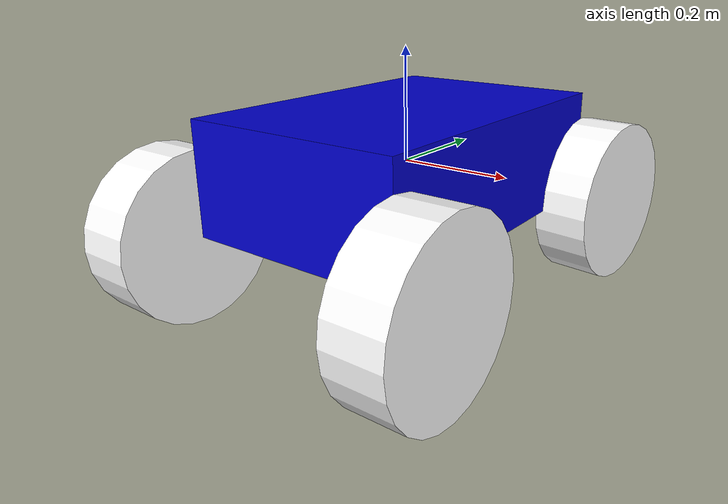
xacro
<?xml version="1.0"?>
<robot xmlns:xacro="http://www.ros.org/wiki/xacro" name="carmodel">

<xacro:property name="bodyLength" value="0.4" />
<xacro:property name="bodyWidth" value="0.6" />
<xacro:property name="bodyHeight" value="0.2" />
<xacro:property name="bodyMass" value="100.0" />

<xacro:property name="wheelLength" value="0.1" />
<xacro:property name="wheelRadius" value="0.15" />
<xacro:property name="wheelMass" value="${ bodyMass * (0.15*0.15*3.14*0.1)/(0.4*0.6*0.2) }" />

<xacro:property name="inertLength" value="${ bodyMass/12 * ( (bodyWidth*bodyWidth)   + (bodyHeight*bodyHeight) ) }" />
<xacro:property name="inertWidth"  value="${ bodyMass/12 * ( (bodyLength*bodyLength) + (bodyHeight*bodyHeight) ) }" />
<xacro:property name="inertHeight" value="${ bodyMass/12 * ( (bodyLength*bodyLength) + (bodyWidth*bodyWidth)   ) }" />

<xacro:property name="inertX"  value="${ wheelMass * (wheelRadius*wheelRadius) / 2 }" />
<xacro:property name="inertYZ" value="${ (wheelMass/12) * ( 3*(wheelRadius*wheelRadius) + (wheelLength*wheelLength) ) }" />

  <material name="blue">
    <color rgba="0 0 .8 1"/>
  </material>

  <material name="black">
    <color rgba="0 0 0 1"/>
  </material>

  <material name="white">
    <color rgba="1 1 1 1"/>
  </material>

  <link name="base_link">
    <visual>
      <geometry>
        <box size = "0.4 0.6 0.2"/>
      </geometry>
      <material name="blue"/>
    </visual>
    <collision>
        <geometry>
                <box size = "0.8 1.2 0.4"/>
        </geometry>
    </collision>

  </link>

  <link name="front_left_wheel">
    <visual>
      <geometry>
        <cylinder length="0.1" radius="0.15"/>
      </geometry>
      <origin rpy="0 1.57075 0"/>
      <material name="white"/>
    </visual>

  </link>

  <joint name="base_to_front_left_wheel" type="continuous">
    <parent link="base_link"/>
    <child link="front_left_wheel"/>
    <origin xyz="-0.25 0.3 -0.1"/>
  </joint>

  <link name="front_right_wheel">
    <visual>
      <geometry>
        <cylinder length="0.1" radius="0.15"/>
      </geometry>
      <origin rpy="0 1.57075 -0.1"/>
      <material name="white"/>
    </visual>

  </link>

  <joint name="base_to_front_right_wheel" type="continuous">
    <parent link="base_link"/>
    <child link="front_right_wheel"/>
    <origin xyz="0.25 0.3 -0.1"/>
  </joint>

  <link name="back_left_wheel">
    <visual>
      <geometry>
        <cylinder length="0.1" radius="0.15"/>
      </geometry>
      <origin rpy="1.57075 1.57075 1.57075"/>
      <material name="white"/>
    </visual>

  </link>

  <joint name="base_to_back_left_wheel" type="fixed">
    <parent link="base_link"/>
    <child link="back_left_wheel"/>
    <origin xyz="-0.25 -0.3 -0.1"/>
  </joint>

  <link name="back_right_wheel">
    <visual>
      <geometry>
        <cylinder length="0.1" radius="0.15"/>
      </geometry>
      <origin rpy="0 1.57075 0"/>
      <material name="white"/>
    </visual>

  </link>

  <joint name="base_to_back_right_wheel" type="fixed">
    <parent link="base_link"/>
    <child link="back_right_wheel"/>
    <origin xyz="0.25 -0.3 -0.1"/>
  </joint>

</robot>
